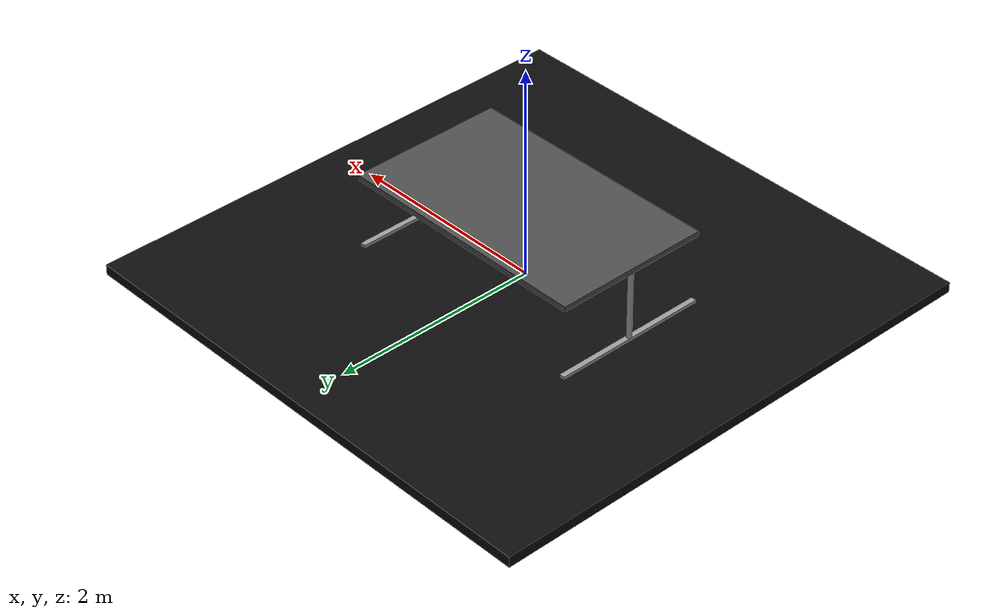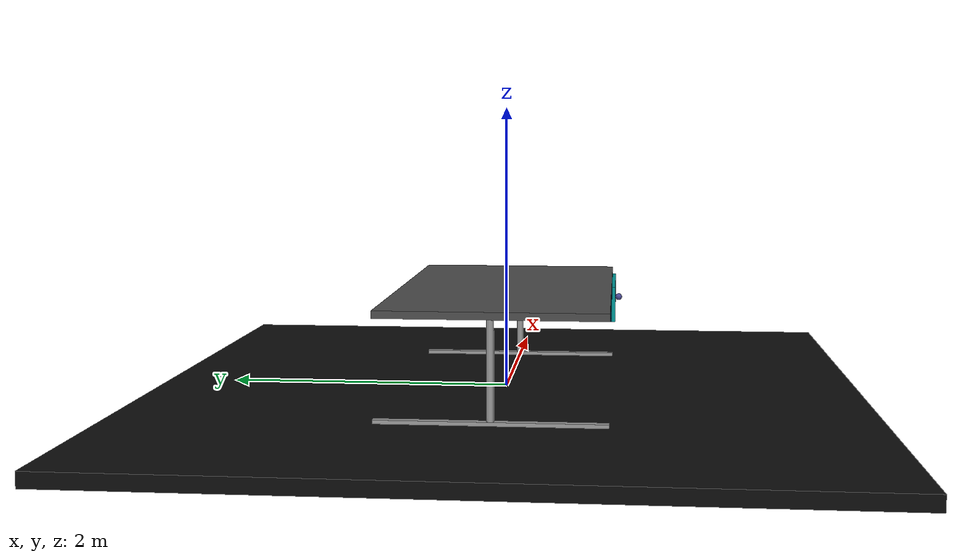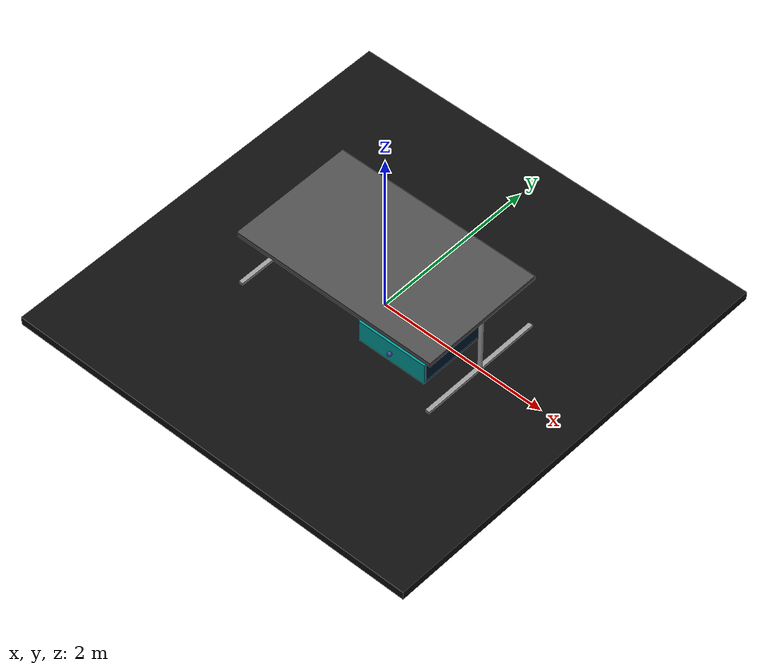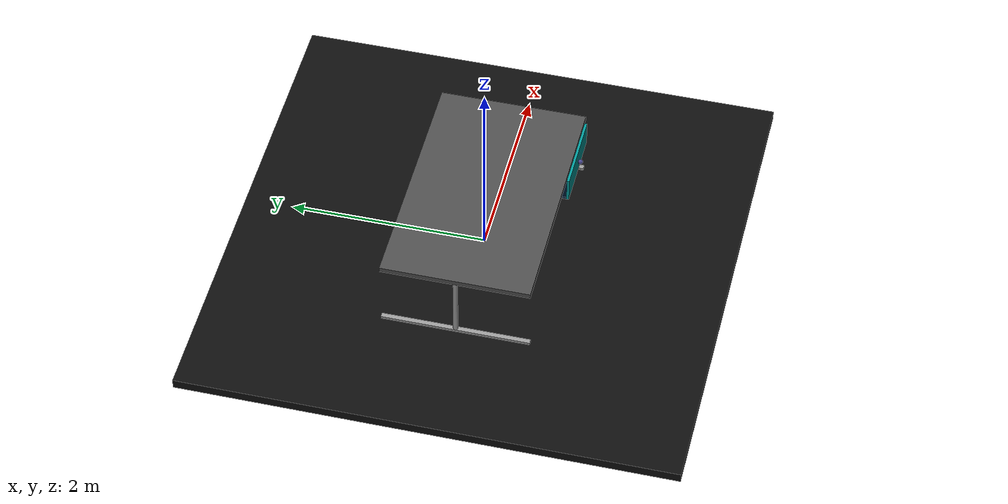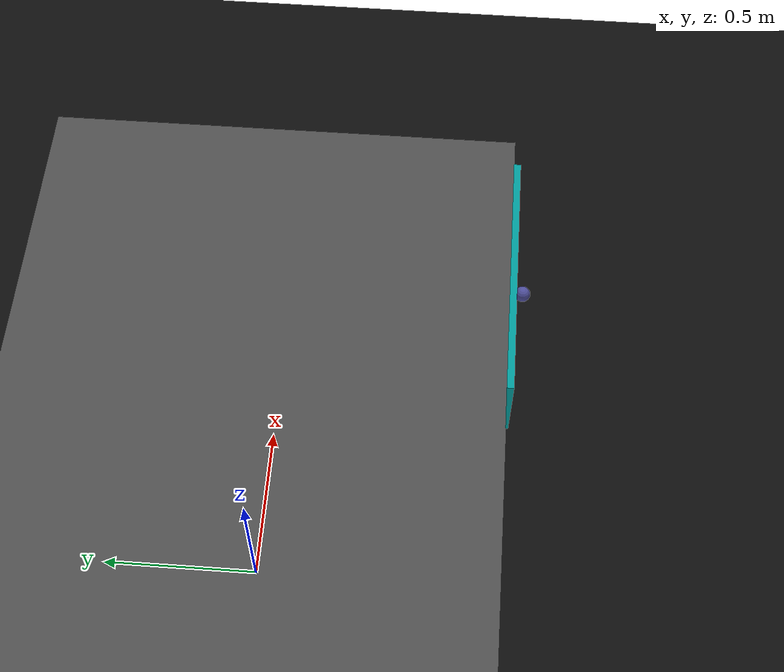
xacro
<?xml version="1.0"?>

<robot name="desk" xmlns:xacro="http://www.ros.org/wiki/xacro">

	<xacro:include filename="table.urdf.xacro"/>
	<xacro:include filename="case.urdf.xacro"/>
	<xacro:include filename="drawer.urdf.xacro"/>

	<xacro:property name="ground_thickness" value="0.1"/>

	<material name="black">
		<color rgba="0.05 0.05 0.05 1"/>
	</material>

	<link name="world"/>

	<link name="ground">
		<visual>
			<geometry>
				<box size="5 5 ${ground_thickness}"/>
			</geometry>
			<origin xyz="0 0 0" rpy="0 0 0"/>
			<material name="black"/>
		</visual>
		<collision>
			<geometry>
				<box size="5 5 ${ground_thickness}"/>
			</geometry>
			<origin xyz="0 0 0" rpy="0 0 0"/>
		</collision>
	</link>

	<joint name="world_ground_joint" type="fixed">
		<parent link="world"/>
		<child link="ground"/>
		<origin xyz="0 0 ${-ground_thickness/2}" rpy="0 0 0"/>
	</joint>

	<xacro:property name="board_h" value="0.7"/>
	<xacro:property name="board_sX" value="2.5"/>
	<xacro:property name="board_sY" value="1.5"/>
	<xacro:property name="board_sZ" value="0.05"/>
	<xacro:property name="planks_width" value="0.025"/>
	<xacro:property name="leg_foot_sX" value="0.05"/>

	<xacro:table board_height="${board_h}" board_sizeX="${board_sX}" board_sizeY="${board_sY}" board_sizeZ="${board_sZ}" leg_foot_sizeX="${leg_foot_sX}" leg_foot_sizeZ="0.025"/>

	<joint name="world_board_joint" type="fixed">
		<parent link="world"/>
		<child link="board"/>
		<origin xyz="0 0 ${board_h}" rpy="0 0 0"/>
	</joint>

	<xacro:case prefix="upper" planks_thickness="${planks_width}" case_sizeX="${board_sX/3}" case_sizeY="${(board_sY/2) + planks_width}" case_sizeZ="${(board_h/3) + planks_width}"/>

	<joint name="board_upper_case_background_joint" type="fixed">
		<parent link="board"/>
		<child link="upper_case_background"/>
		<origin xyz="${(board_sX/2) - ((board_sX/3)/2) - (leg_foot_sX)} ${planks_width/2} ${(-board_sZ/2) - ((board_h/3)/2)}" rpy="0 0 0"/>
	</joint>

	<xacro:drawer prefix="upper" planks_thickness="${planks_width}" drawer_sizeX="${board_sX/3}" drawer_sizeY="${(board_sY/2) + planks_width}" drawer_sizeZ="${(board_h/3) + planks_width}" drawer_handle_radius="0.025"/>

	<joint name="upper_case_bottom_upper_drawer_bottom_joint" type="prismatic">
		<parent link="upper_case_bottom"/>
		<child link="upper_drawer_bottom"/>
		<limit effort="500" lower="${-(((board_sY/2) + planks_width)/2)}" upper="0" velocity="0.5"/>
		<axis xyz="0 1 0"/>
		<origin xyz="0 ${-planks_width/2} ${planks_width}" rpy="0 0 0"/>
	</joint>

</robot>

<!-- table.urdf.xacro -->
<robot name="table" xmlns:xacro="http://www.ros.org/wiki/xacro">

	<xacro:include filename="table_leg.urdf.xacro"/>

	<material name="dark_gray">
		<color rgba="0.3 0.3 0.3 1"/>
	</material>

	<xacro:macro name="table" params="board_height board_sizeX board_sizeY board_sizeZ leg_foot_sizeX leg_foot_sizeZ">

		<link name="board">
			<visual>
				<geometry>
					<box size="${board_sizeX} ${board_sizeY} ${board_sizeZ}"/>
				</geometry>
				<origin xyz="0 0 0" rpy="0 0 0"/>
				<material name="dark_gray"/>
			</visual>
			<collision>
				<geometry>
					<box size="${board_sizeX} ${board_sizeY} ${board_sizeZ}"/>
				</geometry>
				<origin xyz="0 0 0" rpy="0 0 0"/>
			</collision>
		</link>

		<xacro:table_leg prefix="right" body_length="${board_height - leg_foot_sizeZ - (board_sizeZ/2)}" body_radius="${(leg_foot_sizeX/2)}" foot_sizeX="${leg_foot_sizeX}" foot_sizeY="${board_sizeY}" foot_sizeZ="${leg_foot_sizeZ}"/>
		<xacro:table_leg prefix="left" body_length="${board_height - leg_foot_sizeZ - (board_sizeZ/2)}" body_radius="${(leg_foot_sizeX/2)}" foot_sizeX="${leg_foot_sizeX}" foot_sizeY="${board_sizeY}" foot_sizeZ="${leg_foot_sizeZ}"/>

		<joint name="board_right_body_joint" type="fixed">
			<parent link="board"/>
			<child link="right_body"/>
			<origin xyz="${(board_sizeX/2) - (leg_foot_sizeX/2)} 0 ${-board_sizeZ/2 - ((board_height - leg_foot_sizeZ - (board_sizeZ/2))/2)}" rpy="0 0 0"/>
		</joint>

		<joint name="board_left_body_joint" type="fixed">
			<parent link="board"/>
			<child link="left_body"/>
			<origin xyz="${(-board_sizeX/2) + (leg_foot_sizeX/2)} 0 ${-board_sizeZ/2 - ((board_height - leg_foot_sizeZ - (board_sizeZ/2))/2)}" rpy="0 0 0"/>
		</joint>

	</xacro:macro>

</robot>

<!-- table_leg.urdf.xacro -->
<robot name="table_leg" xmlns:xacro="http://www.ros.org/wiki/xacro">

	<material name="light_gray">
		<color rgba="0.6 0.6 0.6 1"/>
	</material>

	<xacro:macro name="table_leg" params="prefix body_length body_radius foot_sizeX foot_sizeY foot_sizeZ">

		<link name="${prefix}_body">
			<visual>
				<geometry>
					<cylinder length="${body_length}" radius="${body_radius}"/>
				</geometry>
				<origin xyz="0 0 0" rpy="0 0 0"/>
				<material name="light_gray"/>
			</visual>
			<collision>
				<geometry>
					<cylinder length="${body_length}" radius="${body_radius}"/>
				</geometry>
				<origin xyz="0 0 0" rpy="0 0 0"/>
			</collision>
		</link>

		<link name="${prefix}_foot">
			<visual>
				<geometry>
					<box size="${foot_sizeX} ${foot_sizeY} ${foot_sizeZ}"/>
				</geometry>
				<origin xyz="0 0 0" rpy="0 0 0"/>
				<material name="light_gray"/>
			</visual>
			<collision>
				<geometry>
					<box size="${foot_sizeX} ${foot_sizeY} ${foot_sizeZ}"/>
				</geometry>
				<origin xyz="0 0 0" rpy="0 0 0"/>
			</collision>
		</link>

		<joint name="${prefix}_body_foot_joint" type="fixed">
			<parent link="${prefix}_body"/>
			<child link="${prefix}_foot"/>
			<origin xyz="0 0 ${(-body_length/2) - (foot_sizeZ/2)}" rpy="0 0 0"/>
		</joint>

	</xacro:macro>

</robot>

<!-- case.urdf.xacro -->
<robot name="case" xmlns:xacro="http://www.ros.org/wiki/xacro">

	<material name="marine">
		<color rgba="0 0.1 0.2 1"/>
	</material>

	<xacro:macro name="case" params="prefix planks_thickness case_sizeX case_sizeY case_sizeZ">

		<link name="${prefix}_case_background">
			<visual>
				<geometry>
					<box size="${case_sizeX} ${planks_thickness} ${case_sizeZ - planks_thickness}"/>
				</geometry>
				<origin xyz="0 0 0" rpy="0 0 0"/>
				<material name="marine"/>
			</visual>
			<collision>
				<geometry>
					<box size="${case_sizeX} ${planks_thickness} ${case_sizeZ - planks_thickness}"/>
				</geometry>
				<origin xyz="0 0 0" rpy="0 0 0"/>
			</collision>
		</link>

		<link name="${prefix}_case_bottom">
			<visual>
				<geometry>
					<box size="${case_sizeX} ${case_sizeY} ${planks_thickness}"/>
				</geometry>
				<origin xyz="0 0 0" rpy="0 0 0"/>
				<material name="marine"/>
			</visual>
			<collision>
				<geometry>
					<box size="${case_sizeX} ${case_sizeY} ${planks_thickness}"/>
				</geometry>
				<origin xyz="0 0 0" rpy="0 0 0"/>
			</collision>
		</link>

		<joint name="${prefix}_case_background_bottom_joint" type="fixed">
			<parent link="${prefix}_case_background"/>
			<child link="${prefix}_case_bottom"/>
			<origin xyz="0 ${(planks_thickness/2) - (case_sizeY/2)} ${-((case_sizeZ - planks_thickness)/2) - (planks_thickness/2)}" rpy="0 0 0"/>
		</joint>

		<link name="${prefix}_case_right">
			<visual>
				<geometry>
					<box size="${planks_thickness} ${case_sizeY - planks_thickness} ${case_sizeZ - planks_thickness}"/>
				</geometry>
				<origin xyz="0 0 0" rpy="0 0 0"/>
				<material name="marine"/>
			</visual>
			<collision>
				<geometry>
					<box size="${planks_thickness} ${case_sizeY - planks_thickness} ${case_sizeZ - planks_thickness}"/>
				</geometry>
				<origin xyz="0 0 0" rpy="0 0 0"/>
			</collision>
		</link>

		<joint name="${prefix}_case_background_right_joint" type="fixed">
			<parent link="${prefix}_case_background"/>
			<child link="${prefix}_case_right"/>
			<origin xyz="${(case_sizeX/2) - (planks_thickness/2)} ${-(planks_thickness/2) - ((case_sizeY - planks_thickness)/2)} 0" rpy="0 0 0"/>
		</joint>

		<link name="${prefix}_case_left">
			<visual>
				<geometry>
					<box size="${planks_thickness} ${case_sizeY - planks_thickness} ${case_sizeZ - planks_thickness}"/>
				</geometry>
				<origin xyz="0 0 0" rpy="0 0 0"/>
				<material name="marine"/>
			</visual>
			<collision>
				<geometry>
					<box size="${planks_thickness} ${case_sizeY - planks_thickness} ${case_sizeZ - planks_thickness}"/>
				</geometry>
				<origin xyz="0 0 0" rpy="0 0 0"/>
			</collision>
		</link>

		<joint name="${prefix}_case_background_left_joint" type="fixed">
			<parent link="${prefix}_case_background"/>
			<child link="${prefix}_case_left"/>
			<origin xyz="${-(case_sizeX/2) + (planks_thickness/2)} ${-(planks_thickness/2) - ((case_sizeY - planks_thickness)/2)} 0" rpy="0 0 0"/>
		</joint>

	</xacro:macro>

</robot>

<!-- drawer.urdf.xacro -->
<robot name="drawer" xmlns:xacro="http://www.ros.org/wiki/xacro">

	<material name="light_turquoise">
		<color rgba="0 0.6 0.6 1"/>
	</material>
	<material name="light_purple">
		<color rgba="0.3 0.3 0.6 1"/>
	</material>

	<xacro:property name="pi" value="3.14159265359"/>

	<xacro:macro name="drawer" params="prefix planks_thickness drawer_sizeX drawer_sizeY drawer_sizeZ drawer_handle_radius">

		<link name="${prefix}_drawer_bottom">
			<visual>
				<geometry>
					<box size="${drawer_sizeX - (2*planks_thickness)} ${drawer_sizeY - planks_thickness} ${planks_thickness}"/>
				</geometry>
				<origin xyz="0 0 0" rpy="0 0 0"/>
				<material name="light_turquoise"/>
			</visual>
			<collision>
				<geometry>
					<box size="${drawer_sizeX - (2*planks_thickness)} ${drawer_sizeY - planks_thickness} ${planks_thickness}"/>
				</geometry>
				<origin xyz="0 0 0" rpy="0 0 0"/>
			</collision>
		</link>

		<link name="${prefix}_drawer_background">
			<visual>
				<geometry>
					<box size="${drawer_sizeX - (2*planks_thickness)} ${planks_thickness} ${drawer_sizeZ - (2*planks_thickness)}"/>
				</geometry>
				<origin xyz="0 0 0" rpy="0 0 0"/>
				<material name="light_turquoise"/>
			</visual>
			<collision>
				<geometry>
					<box size="${drawer_sizeX - (2*planks_thickness)} ${planks_thickness} ${drawer_sizeZ - (2*planks_thickness)}"/>
				</geometry>
				<origin xyz="0 0 0" rpy="0 0 0"/>
			</collision>
		</link>

		<joint name="${prefix}_drawer_bottom_background_joint" type="fixed">
			<parent link="${prefix}_drawer_bottom"/>
			<child link="${prefix}_drawer_background"/>
			<origin xyz="0 ${((drawer_sizeY - planks_thickness)/2) - (planks_thickness/2)} ${((drawer_sizeZ - (2*planks_thickness))/2) + (planks_thickness/2)}" rpy="0 0 0"/>
		</joint>

		<link name="${prefix}_drawer_right">
			<visual>
				<geometry>
					<box size="${planks_thickness} ${drawer_sizeY - (2*planks_thickness)} ${drawer_sizeZ - (2*planks_thickness)}"/>
				</geometry>
				<origin xyz="0 0 0" rpy="0 0 0"/>
				<material name="light_turquoise"/>
			</visual>
			<collision>
				<geometry>
					<box size="${planks_thickness} ${drawer_sizeY - (2*planks_thickness)} ${drawer_sizeZ - (2*planks_thickness)}"/>
				</geometry>
				<origin xyz="0 0 0" rpy="0 0 0"/>
			</collision>
		</link>

		<joint name="${prefix}_drawer_bottom_right_joint" type="fixed">
			<parent link="${prefix}_drawer_bottom"/>
			<child link="${prefix}_drawer_right"/>
			<origin xyz="${((drawer_sizeX - (2*planks_thickness))/2) - (planks_thickness/2)} ${-planks_thickness/2} ${((drawer_sizeZ - (2*planks_thickness))/2) + (planks_thickness/2)}" rpy="0 0 0"/>
		</joint>

		<link name="${prefix}_drawer_left">
			<visual>
				<geometry>
					<box size="${planks_thickness} ${drawer_sizeY - (2*planks_thickness)} ${drawer_sizeZ - (2*planks_thickness)}"/>
				</geometry>
				<origin xyz="0 0 0" rpy="0 0 0"/>
				<material name="light_turquoise"/>
			</visual>
			<collision>
				<geometry>
					<box size="${planks_thickness} ${drawer_sizeY - (2*planks_thickness)} ${drawer_sizeZ - (2*planks_thickness)}"/>
				</geometry>
				<origin xyz="0 0 0" rpy="0 0 0"/>
			</collision>
		</link>

		<joint name="${prefix}_drawer_bottom_left_joint" type="fixed">
			<parent link="${prefix}_drawer_bottom"/>
			<child link="${prefix}_drawer_left"/>
			<origin xyz="${-((drawer_sizeX - (2*planks_thickness))/2) + (planks_thickness/2)} ${-planks_thickness/2} ${((drawer_sizeZ - (2*planks_thickness))/2) + (planks_thickness/2)}" rpy="0 0 0"/>
		</joint>

		<link name="${prefix}_drawer_front">
			<visual>
				<geometry>
					<box size="${drawer_sizeX} ${planks_thickness} ${drawer_sizeZ}"/>
				</geometry>
				<origin xyz="0 0 0" rpy="0 0 0"/>
				<material name="light_turquoise"/>
			</visual>
			<collision>
				<geometry>
					<box size="${drawer_sizeX} ${planks_thickness} ${drawer_sizeZ}"/>
				</geometry>
				<origin xyz="0 0 0" rpy="0 0 0"/>
			</collision>
		</link>

		<joint name="${prefix}_drawer_bottom_front_joint" type="fixed">
			<parent link="${prefix}_drawer_bottom"/>
			<child link="${prefix}_drawer_front"/>
			<origin xyz="0 ${-((drawer_sizeY - planks_thickness)/2) - (planks_thickness/2)} ${(drawer_sizeZ/2) - (3*planks_thickness/2)}" rpy="0 0 0"/>
		</joint>

		<link name="${prefix}_drawer_handle">
			<visual>
				<geometry>
					<sphere radius="${drawer_handle_radius}"/>
				</geometry>
				<origin xyz="0 0 0" rpy="0 0 ${pi/2}"/>
				<material name="light_purple"/>
			</visual>
			<collision>
				<geometry>
					<sphere radius="${drawer_handle_radius}"/>
				</geometry>
				<origin xyz="0 0 0" rpy="0 0 ${pi/2}"/>
			</collision>
		</link>

		<joint name="${prefix}_drawer_front_handle_joint" type="fixed">
			<parent link="${prefix}_drawer_front"/>
			<child link="${prefix}_drawer_handle"/>
			<origin xyz="0 ${-drawer_handle_radius - (planks_thickness/2)} 0" rpy="0 0 0"/>
		</joint>

	</xacro:macro>

</robot>
